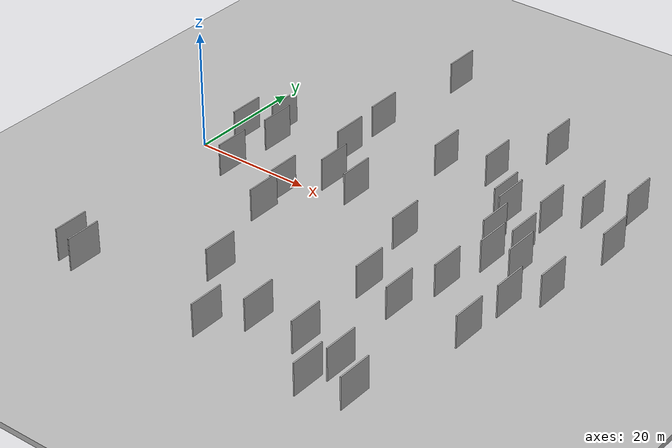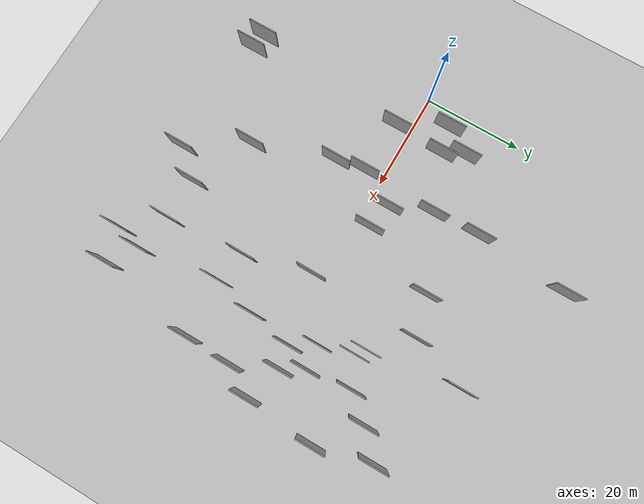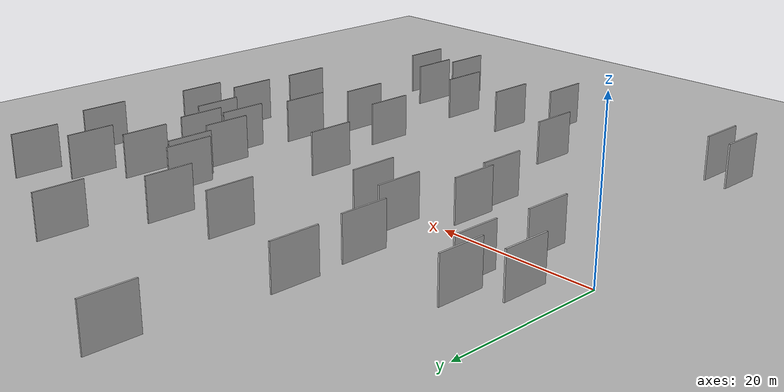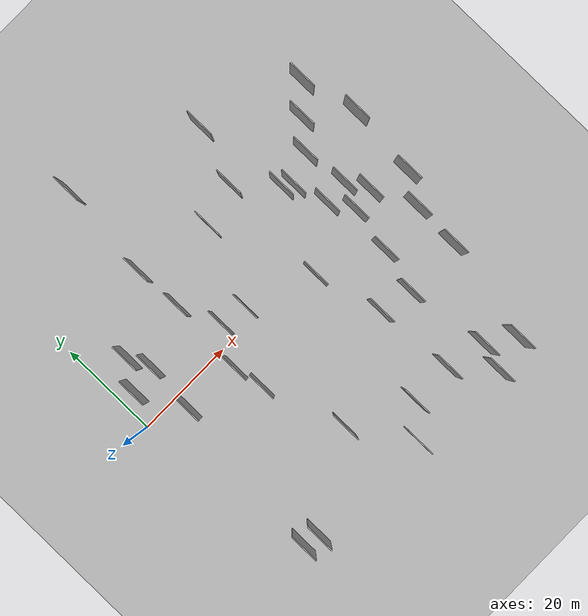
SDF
<?xml version="1.0" encoding="utf-8"?>

<sdf version="1.6">

   <world name="default">

      <gui fullscreen="0">

         <camera name="user_camera">

            <pose>-15 0 4.57585 0 0 0</pose>

            <view_controller>orbit</view_controller>

         </camera>

      </gui>

      <scene>

         <sky>

           <clouds>

             <speed>12</speed>

           </clouds>

         </sky>

         <ambient>0.4 0.4 0.4 1</ambient>

         <background>0.7 0.7 0.7 1</background>

         <shadows>1</shadows>

      </scene>

      <gravity>0 0 -9.8066</gravity>

      <magnetic_field>6e-06 2.3e-05 -4.2e-05</magnetic_field>

      <physics default="0" name="default_physics" type="ode">

         <ode>

            <solver>

               <type>quick</type>

               <iters>10</iters>

               <sor>1.0</sor>

               <use_dynamic_moi_rescaling>0</use_dynamic_moi_rescaling>

            </solver>

            <constraints>

               <cfm>0</cfm>

               <erp>0.2</erp>

               <contact_max_correcting_vel>100</contact_max_correcting_vel>

               <contact_surface_layer>0.001</contact_surface_layer>

            </constraints>

         </ode>

         <max_step_size>0.004</max_step_size>

         <real_time_factor>1</real_time_factor>

         <real_time_update_rate>250</real_time_update_rate>

      </physics>

      <light name="sun" type="directional">

         <cast_shadows>1</cast_shadows>

         <pose>0 0 10 0 0 0</pose>

         <diffuse>0.8 0.8 0.8 1</diffuse>

         <specular>0.2 0.2 0.2 1</specular>

         <attenuation>

            <range>1000</range>

            <constant>0.9</constant>

            <linear>0.01</linear>

            <quadratic>0.001</quadratic>

         </attenuation>

         <direction>-0.5 0.1 -0.9</direction>

      </light>

      <include>

         <name>ground_plane_1</name>

         <uri>model://HANNAS_ground_plane</uri>

         <pose>0 0 0  0 0 0</pose>

      </include>

      <include>

         <name>ground_plane_2</name>

         <uri>model://HANNAS_ground_plane</uri>

         <pose>100 0 0  0 0 0</pose>

      </include>

      <model name="HANNAS_wall_1">

         <static>1</static>

         <pose frame="">60.6106 19.1669 0.0 0.000000 0.000000 1.570796</pose>

         <link name="link">

            <pose frame="">0 0 3.00 0 0 0</pose>

            <collision name="collision">

               <geometry>

                  <box>

                     <size>6.00 0.2 6.00</size>

                  </box>

               </geometry>

               <max_contacts>10</max_contacts>

               <surface>

                  <contact>

                     <ode/>

                  </contact>

                  <bounce/>

                  <friction>

                     <torsional>

                        <ode/>

                     </torsional>

                     <ode/>

                  </friction>

               </surface>

            </collision>

            <visual name="visual">

               <cast_shadows>0</cast_shadows>

               <geometry>

                  <box>

                     <size>6.00 0.2 6.00</size>

                  </box>

               </geometry>

               <material>

                  <script>

                     <uri>model://HANNAS_wall/materials/scripts</uri>

                     <uri>model://HANNAS_wall/materials/textures</uri>

                     <name>vrc/HANNAS_wall</name>

                  </script>

               </material>

            </visual>

            <self_collide>0</self_collide>

            <enable_wind>0</enable_wind>

            <kinematic>0</kinematic>

         </link>

      </model>

      <model name="HANNAS_wall_2">

         <static>1</static>

         <pose frame="">59.8423 1.1666 0.0 0.000000 0.000000 1.570796</pose>

         <link name="link">

            <pose frame="">0 0 3.00 0 0 0</pose>

            <collision name="collision">

               <geometry>

                  <box>

                     <size>6.00 0.2 6.00</size>

                  </box>

               </geometry>

               <max_contacts>10</max_contacts>

               <surface>

                  <contact>

                     <ode/>

                  </contact>

                  <bounce/>

                  <friction>

                     <torsional>

                        <ode/>

                     </torsional>

                     <ode/>

                  </friction>

               </surface>

            </collision>

            <visual name="visual">

               <cast_shadows>0</cast_shadows>

               <geometry>

                  <box>

                     <size>6.00 0.2 6.00</size>

                  </box>

               </geometry>

               <material>

                  <script>

                     <uri>model://HANNAS_wall/materials/scripts</uri>

                     <uri>model://HANNAS_wall/materials/textures</uri>

                     <name>vrc/HANNAS_wall</name>

                  </script>

               </material>

            </visual>

            <self_collide>0</self_collide>

            <enable_wind>0</enable_wind>

            <kinematic>0</kinematic>

         </link>

      </model>

      <model name="HANNAS_wall_3">

         <static>1</static>

         <pose frame="">25.8539 -25.5041 0.0 0.000000 0.000000 1.570796</pose>

         <link name="link">

            <pose frame="">0 0 3.00 0 0 0</pose>

            <collision name="collision">

               <geometry>

                  <box>

                     <size>6.00 0.2 6.00</size>

                  </box>

               </geometry>

               <max_contacts>10</max_contacts>

               <surface>

                  <contact>

                     <ode/>

                  </contact>

                  <bounce/>

                  <friction>

                     <torsional>

                        <ode/>

                     </torsional>

                     <ode/>

                  </friction>

               </surface>

            </collision>

            <visual name="visual">

               <cast_shadows>0</cast_shadows>

               <geometry>

                  <box>

                     <size>6.00 0.2 6.00</size>

                  </box>

               </geometry>

               <material>

                  <script>

                     <uri>model://HANNAS_wall/materials/scripts</uri>

                     <uri>model://HANNAS_wall/materials/textures</uri>

                     <name>vrc/HANNAS_wall</name>

                  </script>

               </material>

            </visual>

            <self_collide>0</self_collide>

            <enable_wind>0</enable_wind>

            <kinematic>0</kinematic>

         </link>

      </model>

      <model name="HANNAS_wall_4">

         <static>1</static>

         <pose frame="">8.4826 -2.9545 0.0 0.000000 0.000000 1.570796</pose>

         <link name="link">

            <pose frame="">0 0 3.00 0 0 0</pose>

            <collision name="collision">

               <geometry>

                  <box>

                     <size>6.00 0.2 6.00</size>

                  </box>

               </geometry>

               <max_contacts>10</max_contacts>

               <surface>

                  <contact>

                     <ode/>

                  </contact>

                  <bounce/>

                  <friction>

                     <torsional>

                        <ode/>

                     </torsional>

                     <ode/>

                  </friction>

               </surface>

            </collision>

            <visual name="visual">

               <cast_shadows>0</cast_shadows>

               <geometry>

                  <box>

                     <size>6.00 0.2 6.00</size>

                  </box>

               </geometry>

               <material>

                  <script>

                     <uri>model://HANNAS_wall/materials/scripts</uri>

                     <uri>model://HANNAS_wall/materials/textures</uri>

                     <name>vrc/HANNAS_wall</name>

                  </script>

               </material>

            </visual>

            <self_collide>0</self_collide>

            <enable_wind>0</enable_wind>

            <kinematic>0</kinematic>

         </link>

      </model>

      <model name="HANNAS_wall_5">

         <static>1</static>

         <pose frame="">9.1204 7.1617 0.0 0.000000 0.000000 1.570796</pose>

         <link name="link">

            <pose frame="">0 0 3.00 0 0 0</pose>

            <collision name="collision">

               <geometry>

                  <box>

                     <size>6.00 0.2 6.00</size>

                  </box>

               </geometry>

               <max_contacts>10</max_contacts>

               <surface>

                  <contact>

                     <ode/>

                  </contact>

                  <bounce/>

                  <friction>

                     <torsional>

                        <ode/>

                     </torsional>

                     <ode/>

                  </friction>

               </surface>

            </collision>

            <visual name="visual">

               <cast_shadows>0</cast_shadows>

               <geometry>

                  <box>

                     <size>6.00 0.2 6.00</size>

                  </box>

               </geometry>

               <material>

                  <script>

                     <uri>model://HANNAS_wall/materials/scripts</uri>

                     <uri>model://HANNAS_wall/materials/textures</uri>

                     <name>vrc/HANNAS_wall</name>

                  </script>

               </material>

            </visual>

            <self_collide>0</self_collide>

            <enable_wind>0</enable_wind>

            <kinematic>0</kinematic>

         </link>

      </model>

      <model name="HANNAS_wall_6">

         <static>1</static>

         <pose frame="">59.3027 -36.7558 0.0 0.000000 0.000000 1.570796</pose>

         <link name="link">

            <pose frame="">0 0 3.00 0 0 0</pose>

            <collision name="collision">

               <geometry>

                  <box>

                     <size>6.00 0.2 6.00</size>

                  </box>

               </geometry>

               <max_contacts>10</max_contacts>

               <surface>

                  <contact>

                     <ode/>

                  </contact>

                  <bounce/>

                  <friction>

                     <torsional>

                        <ode/>

                     </torsional>

                     <ode/>

                  </friction>

               </surface>

            </collision>

            <visual name="visual">

               <cast_shadows>0</cast_shadows>

               <geometry>

                  <box>

                     <size>6.00 0.2 6.00</size>

                  </box>

               </geometry>

               <material>

                  <script>

                     <uri>model://HANNAS_wall/materials/scripts</uri>

                     <uri>model://HANNAS_wall/materials/textures</uri>

                     <name>vrc/HANNAS_wall</name>

                  </script>

               </material>

            </visual>

            <self_collide>0</self_collide>

            <enable_wind>0</enable_wind>

            <kinematic>0</kinematic>

         </link>

      </model>

      <model name="HANNAS_wall_7">

         <static>1</static>

         <pose frame="">28.7849 2.3925 0.0 0.000000 0.000000 1.570796</pose>

         <link name="link">

            <pose frame="">0 0 3.00 0 0 0</pose>

            <collision name="collision">

               <geometry>

                  <box>

                     <size>6.00 0.2 6.00</size>

                  </box>

               </geometry>

               <max_contacts>10</max_contacts>

               <surface>

                  <contact>

                     <ode/>

                  </contact>

                  <bounce/>

                  <friction>

                     <torsional>

                        <ode/>

                     </torsional>

                     <ode/>

                  </friction>

               </surface>

            </collision>

            <visual name="visual">

               <cast_shadows>0</cast_shadows>

               <geometry>

                  <box>

                     <size>6.00 0.2 6.00</size>

                  </box>

               </geometry>

               <material>

                  <script>

                     <uri>model://HANNAS_wall/materials/scripts</uri>

                     <uri>model://HANNAS_wall/materials/textures</uri>

                     <name>vrc/HANNAS_wall</name>

                  </script>

               </material>

            </visual>

            <self_collide>0</self_collide>

            <enable_wind>0</enable_wind>

            <kinematic>0</kinematic>

         </link>

      </model>

      <model name="HANNAS_wall_8">

         <static>1</static>

         <pose frame="">46.4390 -31.2597 0.0 0.000000 0.000000 1.570796</pose>

         <link name="link">

            <pose frame="">0 0 3.00 0 0 0</pose>

            <collision name="collision">

               <geometry>

                  <box>

                     <size>6.00 0.2 6.00</size>

                  </box>

               </geometry>

               <max_contacts>10</max_contacts>

               <surface>

                  <contact>

                     <ode/>

                  </contact>

                  <bounce/>

                  <friction>

                     <torsional>

                        <ode/>

                     </torsional>

                     <ode/>

                  </friction>

               </surface>

            </collision>

            <visual name="visual">

               <cast_shadows>0</cast_shadows>

               <geometry>

                  <box>

                     <size>6.00 0.2 6.00</size>

                  </box>

               </geometry>

               <material>

                  <script>

                     <uri>model://HANNAS_wall/materials/scripts</uri>

                     <uri>model://HANNAS_wall/materials/textures</uri>

                     <name>vrc/HANNAS_wall</name>

                  </script>

               </material>

            </visual>

            <self_collide>0</self_collide>

            <enable_wind>0</enable_wind>

            <kinematic>0</kinematic>

         </link>

      </model>

      <model name="HANNAS_wall_9">

         <static>1</static>

         <pose frame="">53.7684 -8.4751 0.0 0.000000 0.000000 1.570796</pose>

         <link name="link">

            <pose frame="">0 0 3.00 0 0 0</pose>

            <collision name="collision">

               <geometry>

                  <box>

                     <size>6.00 0.2 6.00</size>

                  </box>

               </geometry>

               <max_contacts>10</max_contacts>

               <surface>

                  <contact>

                     <ode/>

                  </contact>

                  <bounce/>

                  <friction>

                     <torsional>

                        <ode/>

                     </torsional>

                     <ode/>

                  </friction>

               </surface>

            </collision>

            <visual name="visual">

               <cast_shadows>0</cast_shadows>

               <geometry>

                  <box>

                     <size>6.00 0.2 6.00</size>

                  </box>

               </geometry>

               <material>

                  <script>

                     <uri>model://HANNAS_wall/materials/scripts</uri>

                     <uri>model://HANNAS_wall/materials/textures</uri>

                     <name>vrc/HANNAS_wall</name>

                  </script>

               </material>

            </visual>

            <self_collide>0</self_collide>

            <enable_wind>0</enable_wind>

            <kinematic>0</kinematic>

         </link>

      </model>

      <model name="HANNAS_wall_10">

         <static>1</static>

         <pose frame="">5.3662 -34.9941 0.0 0.000000 0.000000 1.570796</pose>

         <link name="link">

            <pose frame="">0 0 3.00 0 0 0</pose>

            <collision name="collision">

               <geometry>

                  <box>

                     <size>6.00 0.2 6.00</size>

                  </box>

               </geometry>

               <max_contacts>10</max_contacts>

               <surface>

                  <contact>

                     <ode/>

                  </contact>

                  <bounce/>

                  <friction>

                     <torsional>

                        <ode/>

                     </torsional>

                     <ode/>

                  </friction>

               </surface>

            </collision>

            <visual name="visual">

               <cast_shadows>0</cast_shadows>

               <geometry>

                  <box>

                     <size>6.00 0.2 6.00</size>

                  </box>

               </geometry>

               <material>

                  <script>

                     <uri>model://HANNAS_wall/materials/scripts</uri>

                     <uri>model://HANNAS_wall/materials/textures</uri>

                     <name>vrc/HANNAS_wall</name>

                  </script>

               </material>

            </visual>

            <self_collide>0</self_collide>

            <enable_wind>0</enable_wind>

            <kinematic>0</kinematic>

         </link>

      </model>

      <model name="HANNAS_wall_11">

         <static>1</static>

         <pose frame="">3.6694 6.0725 0.0 0.000000 0.000000 1.570796</pose>

         <link name="link">

            <pose frame="">0 0 3.00 0 0 0</pose>

            <collision name="collision">

               <geometry>

                  <box>

                     <size>6.00 0.2 6.00</size>

                  </box>

               </geometry>

               <max_contacts>10</max_contacts>

               <surface>

                  <contact>

                     <ode/>

                  </contact>

                  <bounce/>

                  <friction>

                     <torsional>

                        <ode/>

                     </torsional>

                     <ode/>

                  </friction>

               </surface>

            </collision>

            <visual name="visual">

               <cast_shadows>0</cast_shadows>

               <geometry>

                  <box>

                     <size>6.00 0.2 6.00</size>

                  </box>

               </geometry>

               <material>

                  <script>

                     <uri>model://HANNAS_wall/materials/scripts</uri>

                     <uri>model://HANNAS_wall/materials/textures</uri>

                     <name>vrc/HANNAS_wall</name>

                  </script>

               </material>

            </visual>

            <self_collide>0</self_collide>

            <enable_wind>0</enable_wind>

            <kinematic>0</kinematic>

         </link>

      </model>

      <model name="HANNAS_wall_12">

         <static>1</static>

         <pose frame="">54.0076 -33.0351 0.0 0.000000 0.000000 1.570796</pose>

         <link name="link">

            <pose frame="">0 0 3.00 0 0 0</pose>

            <collision name="collision">

               <geometry>

                  <box>

                     <size>6.00 0.2 6.00</size>

                  </box>

               </geometry>

               <max_contacts>10</max_contacts>

               <surface>

                  <contact>

                     <ode/>

                  </contact>

                  <bounce/>

                  <friction>

                     <torsional>

                        <ode/>

                     </torsional>

                     <ode/>

                  </friction>

               </surface>

            </collision>

            <visual name="visual">

               <cast_shadows>0</cast_shadows>

               <geometry>

                  <box>

                     <size>6.00 0.2 6.00</size>

                  </box>

               </geometry>

               <material>

                  <script>

                     <uri>model://HANNAS_wall/materials/scripts</uri>

                     <uri>model://HANNAS_wall/materials/textures</uri>

                     <name>vrc/HANNAS_wall</name>

                  </script>

               </material>

            </visual>

            <self_collide>0</self_collide>

            <enable_wind>0</enable_wind>

            <kinematic>0</kinematic>

         </link>

      </model>

      <model name="HANNAS_wall_13">

         <static>1</static>

         <pose frame="">7.2150 11.2109 0.0 0.000000 0.000000 1.570796</pose>

         <link name="link">

            <pose frame="">0 0 3.00 0 0 0</pose>

            <collision name="collision">

               <geometry>

                  <box>

                     <size>6.00 0.2 6.00</size>

                  </box>

               </geometry>

               <max_contacts>10</max_contacts>

               <surface>

                  <contact>

                     <ode/>

                  </contact>

                  <bounce/>

                  <friction>

                     <torsional>

                        <ode/>

                     </torsional>

                     <ode/>

                  </friction>

               </surface>

            </collision>

            <visual name="visual">

               <cast_shadows>0</cast_shadows>

               <geometry>

                  <box>

                     <size>6.00 0.2 6.00</size>

                  </box>

               </geometry>

               <material>

                  <script>

                     <uri>model://HANNAS_wall/materials/scripts</uri>

                     <uri>model://HANNAS_wall/materials/textures</uri>

                     <name>vrc/HANNAS_wall</name>

                  </script>

               </material>

            </visual>

            <self_collide>0</self_collide>

            <enable_wind>0</enable_wind>

            <kinematic>0</kinematic>

         </link>

      </model>

      <model name="HANNAS_wall_14">

         <static>1</static>

         <pose frame="">63.6272 -7.1981 0.0 0.000000 0.000000 1.570796</pose>

         <link name="link">

            <pose frame="">0 0 3.00 0 0 0</pose>

            <collision name="collision">

               <geometry>

                  <box>

                     <size>6.00 0.2 6.00</size>

                  </box>

               </geometry>

               <max_contacts>10</max_contacts>

               <surface>

                  <contact>

                     <ode/>

                  </contact>

                  <bounce/>

                  <friction>

                     <torsional>

                        <ode/>

                     </torsional>

                     <ode/>

                  </friction>

               </surface>

            </collision>

            <visual name="visual">

               <cast_shadows>0</cast_shadows>

               <geometry>

                  <box>

                     <size>6.00 0.2 6.00</size>

                  </box>

               </geometry>

               <material>

                  <script>

                     <uri>model://HANNAS_wall/materials/scripts</uri>

                     <uri>model://HANNAS_wall/materials/textures</uri>

                     <name>vrc/HANNAS_wall</name>

                  </script>

               </material>

            </visual>

            <self_collide>0</self_collide>

            <enable_wind>0</enable_wind>

            <kinematic>0</kinematic>

         </link>

      </model>

      <model name="HANNAS_wall_15">

         <static>1</static>

         <pose frame="">55.3734 0.4795 0.0 0.000000 0.000000 1.570796</pose>

         <link name="link">

            <pose frame="">0 0 3.00 0 0 0</pose>

            <collision name="collision">

               <geometry>

                  <box>

                     <size>6.00 0.2 6.00</size>

                  </box>

               </geometry>

               <max_contacts>10</max_contacts>

               <surface>

                  <contact>

                     <ode/>

                  </contact>

                  <bounce/>

                  <friction>

                     <torsional>

                        <ode/>

                     </torsional>

                     <ode/>

                  </friction>

               </surface>

            </collision>

            <visual name="visual">

               <cast_shadows>0</cast_shadows>

               <geometry>

                  <box>

                     <size>6.00 0.2 6.00</size>

                  </box>

               </geometry>

               <material>

                  <script>

                     <uri>model://HANNAS_wall/materials/scripts</uri>

                     <uri>model://HANNAS_wall/materials/textures</uri>

                     <name>vrc/HANNAS_wall</name>

                  </script>

               </material>

            </visual>

            <self_collide>0</self_collide>

            <enable_wind>0</enable_wind>

            <kinematic>0</kinematic>

         </link>

      </model>

      <model name="HANNAS_wall_16">

         <static>1</static>

         <pose frame="">20.5812 -9.6640 0.0 0.000000 0.000000 1.570796</pose>

         <link name="link">

            <pose frame="">0 0 3.00 0 0 0</pose>

            <collision name="collision">

               <geometry>

                  <box>

                     <size>6.00 0.2 6.00</size>

                  </box>

               </geometry>

               <max_contacts>10</max_contacts>

               <surface>

                  <contact>

                     <ode/>

                  </contact>

                  <bounce/>

                  <friction>

                     <torsional>

                        <ode/>

                     </torsional>

                     <ode/>

                  </friction>

               </surface>

            </collision>

            <visual name="visual">

               <cast_shadows>0</cast_shadows>

               <geometry>

                  <box>

                     <size>6.00 0.2 6.00</size>

                  </box>

               </geometry>

               <material>

                  <script>

                     <uri>model://HANNAS_wall/materials/scripts</uri>

                     <uri>model://HANNAS_wall/materials/textures</uri>

                     <name>vrc/HANNAS_wall</name>

                  </script>

               </material>

            </visual>

            <self_collide>0</self_collide>

            <enable_wind>0</enable_wind>

            <kinematic>0</kinematic>

         </link>

      </model>

      <model name="HANNAS_wall_17">

         <static>1</static>

         <pose frame="">34.6603 17.5819 0.0 0.000000 0.000000 1.570796</pose>

         <link name="link">

            <pose frame="">0 0 3.00 0 0 0</pose>

            <collision name="collision">

               <geometry>

                  <box>

                     <size>6.00 0.2 6.00</size>

                  </box>

               </geometry>

               <max_contacts>10</max_contacts>

               <surface>

                  <contact>

                     <ode/>

                  </contact>

                  <bounce/>

                  <friction>

                     <torsional>

                        <ode/>

                     </torsional>

                     <ode/>

                  </friction>

               </surface>

            </collision>

            <visual name="visual">

               <cast_shadows>0</cast_shadows>

               <geometry>

                  <box>

                     <size>6.00 0.2 6.00</size>

                  </box>

               </geometry>

               <material>

                  <script>

                     <uri>model://HANNAS_wall/materials/scripts</uri>

                     <uri>model://HANNAS_wall/materials/textures</uri>

                     <name>vrc/HANNAS_wall</name>

                  </script>

               </material>

            </visual>

            <self_collide>0</self_collide>

            <enable_wind>0</enable_wind>

            <kinematic>0</kinematic>

         </link>

      </model>

      <model name="HANNAS_wall_18">

         <static>1</static>

         <pose frame="">41.8246 -2.5947 0.0 0.000000 0.000000 1.570796</pose>

         <link name="link">

            <pose frame="">0 0 3.00 0 0 0</pose>

            <collision name="collision">

               <geometry>

                  <box>

                     <size>6.00 0.2 6.00</size>

                  </box>

               </geometry>

               <max_contacts>10</max_contacts>

               <surface>

                  <contact>

                     <ode/>

                  </contact>

                  <bounce/>

                  <friction>

                     <torsional>

                        <ode/>

                     </torsional>

                     <ode/>

                  </friction>

               </surface>

            </collision>

            <visual name="visual">

               <cast_shadows>0</cast_shadows>

               <geometry>

                  <box>

                     <size>6.00 0.2 6.00</size>

                  </box>

               </geometry>

               <material>

                  <script>

                     <uri>model://HANNAS_wall/materials/scripts</uri>

                     <uri>model://HANNAS_wall/materials/textures</uri>

                     <name>vrc/HANNAS_wall</name>

                  </script>

               </material>

            </visual>

            <self_collide>0</self_collide>

            <enable_wind>0</enable_wind>

            <kinematic>0</kinematic>

         </link>

      </model>

      <model name="HANNAS_wall_19">

         <static>1</static>

         <pose frame="">20.3367 11.4685 0.0 0.000000 0.000000 1.570796</pose>

         <link name="link">

            <pose frame="">0 0 3.00 0 0 0</pose>

            <collision name="collision">

               <geometry>

                  <box>

                     <size>6.00 0.2 6.00</size>

                  </box>

               </geometry>

               <max_contacts>10</max_contacts>

               <surface>

                  <contact>

                     <ode/>

                  </contact>

                  <bounce/>

                  <friction>

                     <torsional>

                        <ode/>

                     </torsional>

                     <ode/>

                  </friction>

               </surface>

            </collision>

            <visual name="visual">

               <cast_shadows>0</cast_shadows>

               <geometry>

                  <box>

                     <size>6.00 0.2 6.00</size>

                  </box>

               </geometry>

               <material>

                  <script>

                     <uri>model://HANNAS_wall/materials/scripts</uri>

                     <uri>model://HANNAS_wall/materials/textures</uri>

                     <name>vrc/HANNAS_wall</name>

                  </script>

               </material>

            </visual>

            <self_collide>0</self_collide>

            <enable_wind>0</enable_wind>

            <kinematic>0</kinematic>

         </link>

      </model>

      <model name="HANNAS_wall_20">

         <static>1</static>

         <pose frame="">52.5569 -38.2543 0.0 0.000000 0.000000 1.570796</pose>

         <link name="link">

            <pose frame="">0 0 3.00 0 0 0</pose>

            <collision name="collision">

               <geometry>

                  <box>

                     <size>6.00 0.2 6.00</size>

                  </box>

               </geometry>

               <max_contacts>10</max_contacts>

               <surface>

                  <contact>

                     <ode/>

                  </contact>

                  <bounce/>

                  <friction>

                     <torsional>

                        <ode/>

                     </torsional>

                     <ode/>

                  </friction>

               </surface>

            </collision>

            <visual name="visual">

               <cast_shadows>0</cast_shadows>

               <geometry>

                  <box>

                     <size>6.00 0.2 6.00</size>

                  </box>

               </geometry>

               <material>

                  <script>

                     <uri>model://HANNAS_wall/materials/scripts</uri>

                     <uri>model://HANNAS_wall/materials/textures</uri>

                     <name>vrc/HANNAS_wall</name>

                  </script>

               </material>

            </visual>

            <self_collide>0</self_collide>

            <enable_wind>0</enable_wind>

            <kinematic>0</kinematic>

         </link>

      </model>

      <model name="HANNAS_wall_21">

         <static>1</static>

         <pose frame="">46.4902 31.0436 0.0 0.000000 0.000000 1.570796</pose>

         <link name="link">

            <pose frame="">0 0 3.00 0 0 0</pose>

            <collision name="collision">

               <geometry>

                  <box>

                     <size>6.00 0.2 6.00</size>

                  </box>

               </geometry>

               <max_contacts>10</max_contacts>

               <surface>

                  <contact>

                     <ode/>

                  </contact>

                  <bounce/>

                  <friction>

                     <torsional>

                        <ode/>

                     </torsional>

                     <ode/>

                  </friction>

               </surface>

            </collision>

            <visual name="visual">

               <cast_shadows>0</cast_shadows>

               <geometry>

                  <box>

                     <size>6.00 0.2 6.00</size>

                  </box>

               </geometry>

               <material>

                  <script>

                     <uri>model://HANNAS_wall/materials/scripts</uri>

                     <uri>model://HANNAS_wall/materials/textures</uri>

                     <name>vrc/HANNAS_wall</name>

                  </script>

               </material>

            </visual>

            <self_collide>0</self_collide>

            <enable_wind>0</enable_wind>

            <kinematic>0</kinematic>

         </link>

      </model>

      <model name="HANNAS_wall_22">

         <static>1</static>

         <pose frame="">63.2864 -16.4735 0.0 0.000000 0.000000 1.570796</pose>

         <link name="link">

            <pose frame="">0 0 3.00 0 0 0</pose>

            <collision name="collision">

               <geometry>

                  <box>

                     <size>6.00 0.2 6.00</size>

                  </box>

               </geometry>

               <max_contacts>10</max_contacts>

               <surface>

                  <contact>

                     <ode/>

                  </contact>

                  <bounce/>

                  <friction>

                     <torsional>

                        <ode/>

                     </torsional>

                     <ode/>

                  </friction>

               </surface>

            </collision>

            <visual name="visual">

               <cast_shadows>0</cast_shadows>

               <geometry>

                  <box>

                     <size>6.00 0.2 6.00</size>

                  </box>

               </geometry>

               <material>

                  <script>

                     <uri>model://HANNAS_wall/materials/scripts</uri>

                     <uri>model://HANNAS_wall/materials/textures</uri>

                     <name>vrc/HANNAS_wall</name>

                  </script>

               </material>

            </visual>

            <self_collide>0</self_collide>

            <enable_wind>0</enable_wind>

            <kinematic>0</kinematic>

         </link>

      </model>

      <model name="HANNAS_wall_23">

         <static>1</static>

         <pose frame="">57.4566 5.3996 0.0 0.000000 0.000000 1.570796</pose>

         <link name="link">

            <pose frame="">0 0 3.00 0 0 0</pose>

            <collision name="collision">

               <geometry>

                  <box>

                     <size>6.00 0.2 6.00</size>

                  </box>

               </geometry>

               <max_contacts>10</max_contacts>

               <surface>

                  <contact>

                     <ode/>

                  </contact>

                  <bounce/>

                  <friction>

                     <torsional>

                        <ode/>

                     </torsional>

                     <ode/>

                  </friction>

               </surface>

            </collision>

            <visual name="visual">

               <cast_shadows>0</cast_shadows>

               <geometry>

                  <box>

                     <size>6.00 0.2 6.00</size>

                  </box>

               </geometry>

               <material>

                  <script>

                     <uri>model://HANNAS_wall/materials/scripts</uri>

                     <uri>model://HANNAS_wall/materials/textures</uri>

                     <name>vrc/HANNAS_wall</name>

                  </script>

               </material>

            </visual>

            <self_collide>0</self_collide>

            <enable_wind>0</enable_wind>

            <kinematic>0</kinematic>

         </link>

      </model>

      <model name="HANNAS_wall_24">

         <static>1</static>

         <pose frame="">65.5141 23.8808 0.0 0.000000 0.000000 1.570796</pose>

         <link name="link">

            <pose frame="">0 0 3.00 0 0 0</pose>

            <collision name="collision">

               <geometry>

                  <box>

                     <size>6.00 0.2 6.00</size>

                  </box>

               </geometry>

               <max_contacts>10</max_contacts>

               <surface>

                  <contact>

                     <ode/>

                  </contact>

                  <bounce/>

                  <friction>

                     <torsional>

                        <ode/>

                     </torsional>

                     <ode/>

                  </friction>

               </surface>

            </collision>

            <visual name="visual">

               <cast_shadows>0</cast_shadows>

               <geometry>

                  <box>

                     <size>6.00 0.2 6.00</size>

                  </box>

               </geometry>

               <material>

                  <script>

                     <uri>model://HANNAS_wall/materials/scripts</uri>

                     <uri>model://HANNAS_wall/materials/textures</uri>

                     <name>vrc/HANNAS_wall</name>

                  </script>

               </material>

            </visual>

            <self_collide>0</self_collide>

            <enable_wind>0</enable_wind>

            <kinematic>0</kinematic>

         </link>

      </model>

      <model name="HANNAS_wall_25">

         <static>1</static>

         <pose frame="">21.5370 39.8752 0.0 0.000000 0.000000 1.570796</pose>

         <link name="link">

            <pose frame="">0 0 3.00 0 0 0</pose>

            <collision name="collision">

               <geometry>

                  <box>

                     <size>6.00 0.2 6.00</size>

                  </box>

               </geometry>

               <max_contacts>10</max_contacts>

               <surface>

                  <contact>

                     <ode/>

                  </contact>

                  <bounce/>

                  <friction>

                     <torsional>

                        <ode/>

                     </torsional>

                     <ode/>

                  </friction>

               </surface>

            </collision>

            <visual name="visual">

               <cast_shadows>0</cast_shadows>

               <geometry>

                  <box>

                     <size>6.00 0.2 6.00</size>

                  </box>

               </geometry>

               <material>

                  <script>

                     <uri>model://HANNAS_wall/materials/scripts</uri>

                     <uri>model://HANNAS_wall/materials/textures</uri>

                     <name>vrc/HANNAS_wall</name>

                  </script>

               </material>

            </visual>

            <self_collide>0</self_collide>

            <enable_wind>0</enable_wind>

            <kinematic>0</kinematic>

         </link>

      </model>

      <model name="HANNAS_wall_26">

         <static>1</static>

         <pose frame="">51.6937 -17.0711 0.0 0.000000 0.000000 1.570796</pose>

         <link name="link">

            <pose frame="">0 0 3.00 0 0 0</pose>

            <collision name="collision">

               <geometry>

                  <box>

                     <size>6.00 0.2 6.00</size>

                  </box>

               </geometry>

               <max_contacts>10</max_contacts>

               <surface>

                  <contact>

                     <ode/>

                  </contact>

                  <bounce/>

                  <friction>

                     <torsional>

                        <ode/>

                     </torsional>

                     <ode/>

                  </friction>

               </surface>

            </collision>

            <visual name="visual">

               <cast_shadows>0</cast_shadows>

               <geometry>

                  <box>

                     <size>6.00 0.2 6.00</size>

                  </box>

               </geometry>

               <material>

                  <script>

                     <uri>model://HANNAS_wall/materials/scripts</uri>

                     <uri>model://HANNAS_wall/materials/textures</uri>

                     <name>vrc/HANNAS_wall</name>

                  </script>

               </material>

            </visual>

            <self_collide>0</self_collide>

            <enable_wind>0</enable_wind>

            <kinematic>0</kinematic>

         </link>

      </model>

      <model name="HANNAS_wall_27">

         <static>1</static>

         <pose frame="">42.6340 19.9291 0.0 0.000000 0.000000 1.570796</pose>

         <link name="link">

            <pose frame="">0 0 3.00 0 0 0</pose>

            <collision name="collision">

               <geometry>

                  <box>

                     <size>6.00 0.2 6.00</size>

                  </box>

               </geometry>

               <max_contacts>10</max_contacts>

               <surface>

                  <contact>

                     <ode/>

                  </contact>

                  <bounce/>

                  <friction>

                     <torsional>

                        <ode/>

                     </torsional>

                     <ode/>

                  </friction>

               </surface>

            </collision>

            <visual name="visual">

               <cast_shadows>0</cast_shadows>

               <geometry>

                  <box>

                     <size>6.00 0.2 6.00</size>

                  </box>

               </geometry>

               <material>

                  <script>

                     <uri>model://HANNAS_wall/materials/scripts</uri>

                     <uri>model://HANNAS_wall/materials/textures</uri>

                     <name>vrc/HANNAS_wall</name>

                  </script>

               </material>

            </visual>

            <self_collide>0</self_collide>

            <enable_wind>0</enable_wind>

            <kinematic>0</kinematic>

         </link>

      </model>

      <model name="HANNAS_wall_28">

         <static>1</static>

         <pose frame="">33.1658 -36.7118 0.0 0.000000 0.000000 1.570796</pose>

         <link name="link">

            <pose frame="">0 0 3.00 0 0 0</pose>

            <collision name="collision">

               <geometry>

                  <box>

                     <size>6.00 0.2 6.00</size>

                  </box>

               </geometry>

               <max_contacts>10</max_contacts>

               <surface>

                  <contact>

                     <ode/>

                  </contact>

                  <bounce/>

                  <friction>

                     <torsional>

                        <ode/>

                     </torsional>

                     <ode/>

                  </friction>

               </surface>

            </collision>

            <visual name="visual">

               <cast_shadows>0</cast_shadows>

               <geometry>

                  <box>

                     <size>6.00 0.2 6.00</size>

                  </box>

               </geometry>

               <material>

                  <script>

                     <uri>model://HANNAS_wall/materials/scripts</uri>

                     <uri>model://HANNAS_wall/materials/textures</uri>

                     <name>vrc/HANNAS_wall</name>

                  </script>

               </material>

            </visual>

            <self_collide>0</self_collide>

            <enable_wind>0</enable_wind>

            <kinematic>0</kinematic>

         </link>

      </model>

      <model name="HANNAS_wall_29">

         <static>1</static>

         <pose frame="">67.0314 -1.3515 0.0 0.000000 0.000000 1.570796</pose>

         <link name="link">

            <pose frame="">0 0 3.00 0 0 0</pose>

            <collision name="collision">

               <geometry>

                  <box>

                     <size>6.00 0.2 6.00</size>

                  </box>

               </geometry>

               <max_contacts>10</max_contacts>

               <surface>

                  <contact>

                     <ode/>

                  </contact>

                  <bounce/>

                  <friction>

                     <torsional>

                        <ode/>

                     </torsional>

                     <ode/>

                  </friction>

               </surface>

            </collision>

            <visual name="visual">

               <cast_shadows>0</cast_shadows>

               <geometry>

                  <box>

                     <size>6.00 0.2 6.00</size>

                  </box>

               </geometry>

               <material>

                  <script>

                     <uri>model://HANNAS_wall/materials/scripts</uri>

                     <uri>model://HANNAS_wall/materials/textures</uri>

                     <name>vrc/HANNAS_wall</name>

                  </script>

               </material>

            </visual>

            <self_collide>0</self_collide>

            <enable_wind>0</enable_wind>

            <kinematic>0</kinematic>

         </link>

      </model>

      <model name="HANNAS_wall_30">

         <static>1</static>

         <pose frame="">8.5747 -35.7429 0.0 0.000000 0.000000 1.570796</pose>

         <link name="link">

            <pose frame="">0 0 3.00 0 0 0</pose>

            <collision name="collision">

               <geometry>

                  <box>

                     <size>6.00 0.2 6.00</size>

                  </box>

               </geometry>

               <max_contacts>10</max_contacts>

               <surface>

                  <contact>

                     <ode/>

                  </contact>

                  <bounce/>

                  <friction>

                     <torsional>

                        <ode/>

                     </torsional>

                     <ode/>

                  </friction>

               </surface>

            </collision>

            <visual name="visual">

               <cast_shadows>0</cast_shadows>

               <geometry>

                  <box>

                     <size>6.00 0.2 6.00</size>

                  </box>

               </geometry>

               <material>

                  <script>

                     <uri>model://HANNAS_wall/materials/scripts</uri>

                     <uri>model://HANNAS_wall/materials/textures</uri>

                     <name>vrc/HANNAS_wall</name>

                  </script>

               </material>

            </visual>

            <self_collide>0</self_collide>

            <enable_wind>0</enable_wind>

            <kinematic>0</kinematic>

         </link>

      </model>

      <model name="HANNAS_wall_31">

         <static>1</static>

         <pose frame="">45.2693 -15.6107 0.0 0.000000 0.000000 1.570796</pose>

         <link name="link">

            <pose frame="">0 0 3.00 0 0 0</pose>

            <collision name="collision">

               <geometry>

                  <box>

                     <size>6.00 0.2 6.00</size>

                  </box>

               </geometry>

               <max_contacts>10</max_contacts>

               <surface>

                  <contact>

                     <ode/>

                  </contact>

                  <bounce/>

                  <friction>

                     <torsional>

                        <ode/>

                     </torsional>

                     <ode/>

                  </friction>

               </surface>

            </collision>

            <visual name="visual">

               <cast_shadows>0</cast_shadows>

               <geometry>

                  <box>

                     <size>6.00 0.2 6.00</size>

                  </box>

               </geometry>

               <material>

                  <script>

                     <uri>model://HANNAS_wall/materials/scripts</uri>

                     <uri>model://HANNAS_wall/materials/textures</uri>

                     <name>vrc/HANNAS_wall</name>

                  </script>

               </material>

            </visual>

            <self_collide>0</self_collide>

            <enable_wind>0</enable_wind>

            <kinematic>0</kinematic>

         </link>

      </model>

      <model name="HANNAS_wall_32">

         <static>1</static>

         <pose frame="">52.5953 5.0346 0.0 0.000000 0.000000 1.570796</pose>

         <link name="link">

            <pose frame="">0 0 3.00 0 0 0</pose>

            <collision name="collision">

               <geometry>

                  <box>

                     <size>6.00 0.2 6.00</size>

                  </box>

               </geometry>

               <max_contacts>10</max_contacts>

               <surface>

                  <contact>

                     <ode/>

                  </contact>

                  <bounce/>

                  <friction>

                     <torsional>

                        <ode/>

                     </torsional>

                     <ode/>

                  </friction>

               </surface>

            </collision>

            <visual name="visual">

               <cast_shadows>0</cast_shadows>

               <geometry>

                  <box>

                     <size>6.00 0.2 6.00</size>

                  </box>

               </geometry>

               <material>

                  <script>

                     <uri>model://HANNAS_wall/materials/scripts</uri>

                     <uri>model://HANNAS_wall/materials/textures</uri>

                     <name>vrc/HANNAS_wall</name>

                  </script>

               </material>

            </visual>

            <self_collide>0</self_collide>

            <enable_wind>0</enable_wind>

            <kinematic>0</kinematic>

         </link>

      </model>

      <model name="HANNAS_wall_33">

         <static>1</static>

         <pose frame="">50.7353 11.6532 0.0 0.000000 0.000000 1.570796</pose>

         <link name="link">

            <pose frame="">0 0 3.00 0 0 0</pose>

            <collision name="collision">

               <geometry>

                  <box>

                     <size>6.00 0.2 6.00</size>

                  </box>

               </geometry>

               <max_contacts>10</max_contacts>

               <surface>

                  <contact>

                     <ode/>

                  </contact>

                  <bounce/>

                  <friction>

                     <torsional>

                        <ode/>

                     </torsional>

                     <ode/>

                  </friction>

               </surface>

            </collision>

            <visual name="visual">

               <cast_shadows>0</cast_shadows>

               <geometry>

                  <box>

                     <size>6.00 0.2 6.00</size>

                  </box>

               </geometry>

               <material>

                  <script>

                     <uri>model://HANNAS_wall/materials/scripts</uri>

                     <uri>model://HANNAS_wall/materials/textures</uri>

                     <name>vrc/HANNAS_wall</name>

                  </script>

               </material>

            </visual>

            <self_collide>0</self_collide>

            <enable_wind>0</enable_wind>

            <kinematic>0</kinematic>

         </link>

      </model>

      <model name="HANNAS_wall_34">

         <static>1</static>

         <pose frame="">23.5591 3.4864 0.0 0.000000 0.000000 1.570796</pose>

         <link name="link">

            <pose frame="">0 0 3.00 0 0 0</pose>

            <collision name="collision">

               <geometry>

                  <box>

                     <size>6.00 0.2 6.00</size>

                  </box>

               </geometry>

               <max_contacts>10</max_contacts>

               <surface>

                  <contact>

                     <ode/>

                  </contact>

                  <bounce/>

                  <friction>

                     <torsional>

                        <ode/>

                     </torsional>

                     <ode/>

                  </friction>

               </surface>

            </collision>

            <visual name="visual">

               <cast_shadows>0</cast_shadows>

               <geometry>

                  <box>

                     <size>6.00 0.2 6.00</size>

                  </box>

               </geometry>

               <material>

                  <script>

                     <uri>model://HANNAS_wall/materials/scripts</uri>

                     <uri>model://HANNAS_wall/materials/textures</uri>

                     <name>vrc/HANNAS_wall</name>

                  </script>

               </material>

            </visual>

            <self_collide>0</self_collide>

            <enable_wind>0</enable_wind>

            <kinematic>0</kinematic>

         </link>

      </model>

      <model name="HANNAS_wall_35">

         <static>1</static>

         <pose frame="">56.4329 14.2457 0.0 0.000000 0.000000 1.570796</pose>

         <link name="link">

            <pose frame="">0 0 3.00 0 0 0</pose>

            <collision name="collision">

               <geometry>

                  <box>

                     <size>6.00 0.2 6.00</size>

                  </box>

               </geometry>

               <max_contacts>10</max_contacts>

               <surface>

                  <contact>

                     <ode/>

                  </contact>

                  <bounce/>

                  <friction>

                     <torsional>

                        <ode/>

                     </torsional>

                     <ode/>

                  </friction>

               </surface>

            </collision>

            <visual name="visual">

               <cast_shadows>0</cast_shadows>

               <geometry>

                  <box>

                     <size>6.00 0.2 6.00</size>

                  </box>

               </geometry>

               <material>

                  <script>

                     <uri>model://HANNAS_wall/materials/scripts</uri>

                     <uri>model://HANNAS_wall/materials/textures</uri>

                     <name>vrc/HANNAS_wall</name>

                  </script>

               </material>

            </visual>

            <self_collide>0</self_collide>

            <enable_wind>0</enable_wind>

            <kinematic>0</kinematic>

         </link>

      </model>

      <model name="HANNAS_wall_36">

         <static>1</static>

         <pose frame="">68.2515 12.8195 0.0 0.000000 0.000000 1.570796</pose>

         <link name="link">

            <pose frame="">0 0 3.00 0 0 0</pose>

            <collision name="collision">

               <geometry>

                  <box>

                     <size>6.00 0.2 6.00</size>

                  </box>

               </geometry>

               <max_contacts>10</max_contacts>

               <surface>

                  <contact>

                     <ode/>

                  </contact>

                  <bounce/>

                  <friction>

                     <torsional>

                        <ode/>

                     </torsional>

                     <ode/>

                  </friction>

               </surface>

            </collision>

            <visual name="visual">

               <cast_shadows>0</cast_shadows>

               <geometry>

                  <box>

                     <size>6.00 0.2 6.00</size>

                  </box>

               </geometry>

               <material>

                  <script>

                     <uri>model://HANNAS_wall/materials/scripts</uri>

                     <uri>model://HANNAS_wall/materials/textures</uri>

                     <name>vrc/HANNAS_wall</name>

                  </script>

               </material>

            </visual>

            <self_collide>0</self_collide>

            <enable_wind>0</enable_wind>

            <kinematic>0</kinematic>

         </link>

      </model>

      <model name="HANNAS_wall_37">

         <static>1</static>

         <pose frame="">19.5190 -3.9359 0.0 0.000000 0.000000 1.570796</pose>

         <link name="link">

            <pose frame="">0 0 3.00 0 0 0</pose>

            <collision name="collision">

               <geometry>

                  <box>

                     <size>6.00 0.2 6.00</size>

                  </box>

               </geometry>

               <max_contacts>10</max_contacts>

               <surface>

                  <contact>

                     <ode/>

                  </contact>

                  <bounce/>

                  <friction>

                     <torsional>

                        <ode/>

                     </torsional>

                     <ode/>

                  </friction>

               </surface>

            </collision>

            <visual name="visual">

               <cast_shadows>0</cast_shadows>

               <geometry>

                  <box>

                     <size>6.00 0.2 6.00</size>

                  </box>

               </geometry>

               <material>

                  <script>

                     <uri>model://HANNAS_wall/materials/scripts</uri>

                     <uri>model://HANNAS_wall/materials/textures</uri>

                     <name>vrc/HANNAS_wall</name>

                  </script>

               </material>

            </visual>

            <self_collide>0</self_collide>

            <enable_wind>0</enable_wind>

            <kinematic>0</kinematic>

         </link>

      </model>

      <model name="HANNAS_wall_38">

         <static>1</static>

         <pose frame="">19.8801 20.8399 0.0 0.000000 0.000000 1.570796</pose>

         <link name="link">

            <pose frame="">0 0 3.00 0 0 0</pose>

            <collision name="collision">

               <geometry>

                  <box>

                     <size>6.00 0.2 6.00</size>

                  </box>

               </geometry>

               <max_contacts>10</max_contacts>

               <surface>

                  <contact>

                     <ode/>

                  </contact>

                  <bounce/>

                  <friction>

                     <torsional>

                        <ode/>

                     </torsional>

                     <ode/>

                  </friction>

               </surface>

            </collision>

            <visual name="visual">

               <cast_shadows>0</cast_shadows>

               <geometry>

                  <box>

                     <size>6.00 0.2 6.00</size>

                  </box>

               </geometry>

               <material>

                  <script>

                     <uri>model://HANNAS_wall/materials/scripts</uri>

                     <uri>model://HANNAS_wall/materials/textures</uri>

                     <name>vrc/HANNAS_wall</name>

                  </script>

               </material>

            </visual>

            <self_collide>0</self_collide>

            <enable_wind>0</enable_wind>

            <kinematic>0</kinematic>

         </link>

      </model>

      <model name="HANNAS_wall_39">

         <static>1</static>

         <pose frame="">37.9882 -31.3109 0.0 0.000000 0.000000 1.570796</pose>

         <link name="link">

            <pose frame="">0 0 3.00 0 0 0</pose>

            <collision name="collision">

               <geometry>

                  <box>

                     <size>6.00 0.2 6.00</size>

                  </box>

               </geometry>

               <max_contacts>10</max_contacts>

               <surface>

                  <contact>

                     <ode/>

                  </contact>

                  <bounce/>

                  <friction>

                     <torsional>

                        <ode/>

                     </torsional>

                     <ode/>

                  </friction>

               </surface>

            </collision>

            <visual name="visual">

               <cast_shadows>0</cast_shadows>

               <geometry>

                  <box>

                     <size>6.00 0.2 6.00</size>

                  </box>

               </geometry>

               <material>

                  <script>

                     <uri>model://HANNAS_wall/materials/scripts</uri>

                     <uri>model://HANNAS_wall/materials/textures</uri>

                     <name>vrc/HANNAS_wall</name>

                  </script>

               </material>

            </visual>

            <self_collide>0</self_collide>

            <enable_wind>0</enable_wind>

            <kinematic>0</kinematic>

         </link>

      </model>

      <model name="HANNAS_wall_40">

         <static>1</static>

         <pose frame="">48.9820 13.0044 0.0 0.000000 0.000000 1.570796</pose>

         <link name="link">

            <pose frame="">0 0 3.00 0 0 0</pose>

            <collision name="collision">

               <geometry>

                  <box>

                     <size>6.00 0.2 6.00</size>

                  </box>

               </geometry>

               <max_contacts>10</max_contacts>

               <surface>

                  <contact>

                     <ode/>

                  </contact>

                  <bounce/>

                  <friction>

                     <torsional>

                        <ode/>

                     </torsional>

                     <ode/>

                  </friction>

               </surface>

            </collision>

            <visual name="visual">

               <cast_shadows>0</cast_shadows>

               <geometry>

                  <box>

                     <size>6.00 0.2 6.00</size>

                  </box>

               </geometry>

               <material>

                  <script>

                     <uri>model://HANNAS_wall/materials/scripts</uri>

                     <uri>model://HANNAS_wall/materials/textures</uri>

                     <name>vrc/HANNAS_wall</name>

                  </script>

               </material>

            </visual>

            <self_collide>0</self_collide>

            <enable_wind>0</enable_wind>

            <kinematic>0</kinematic>

         </link>

      </model>

   </world>

</sdf>
